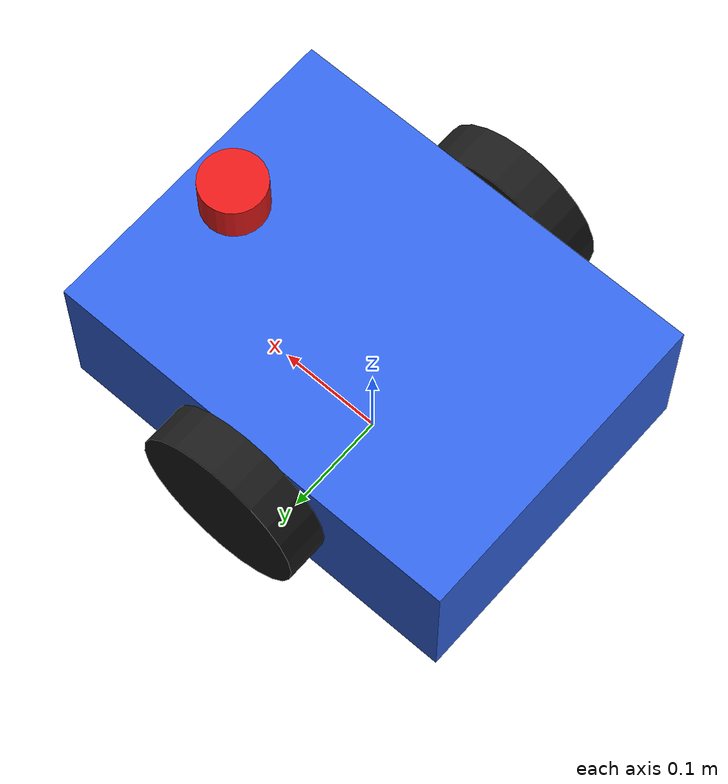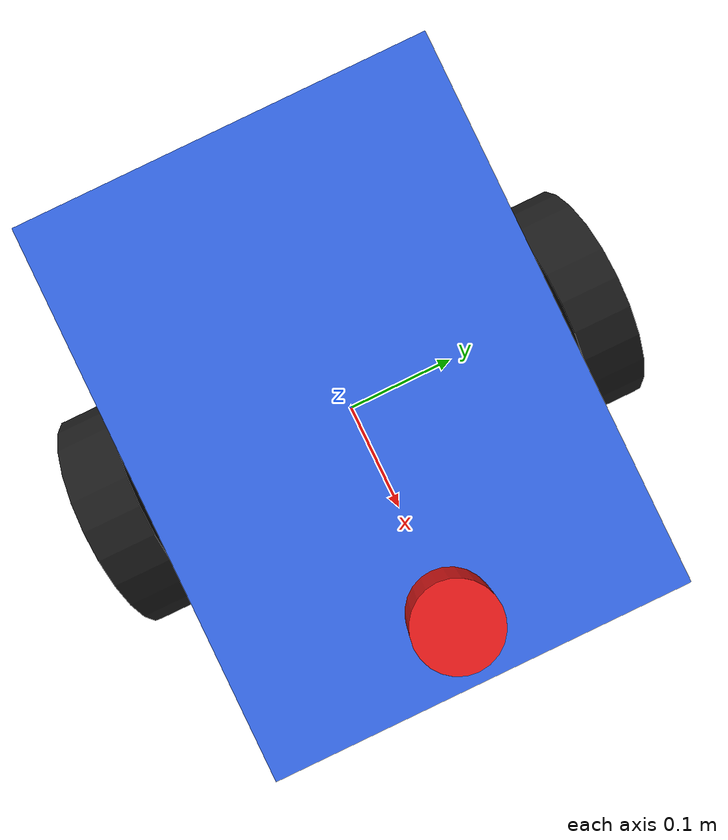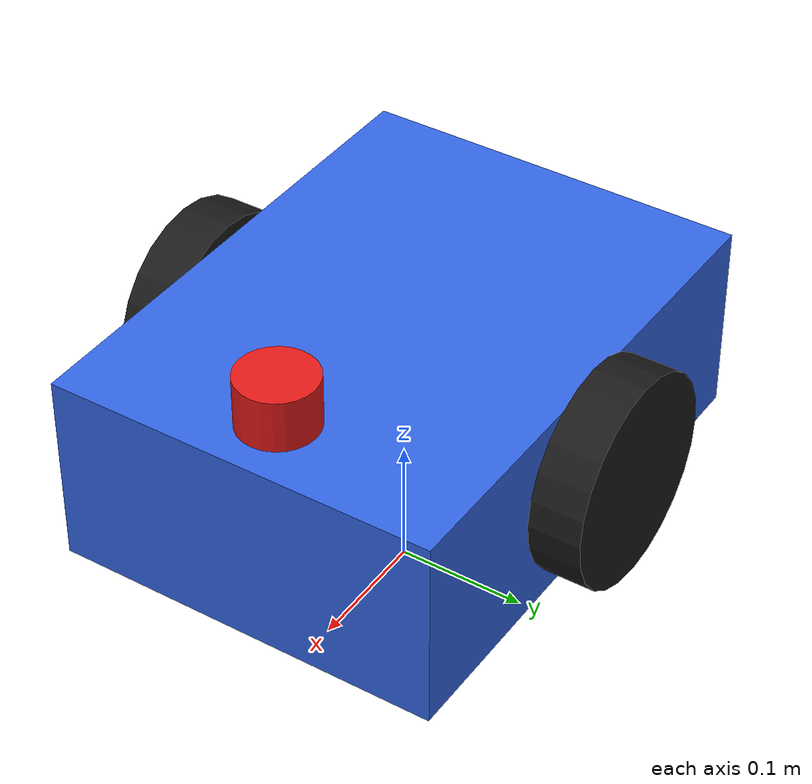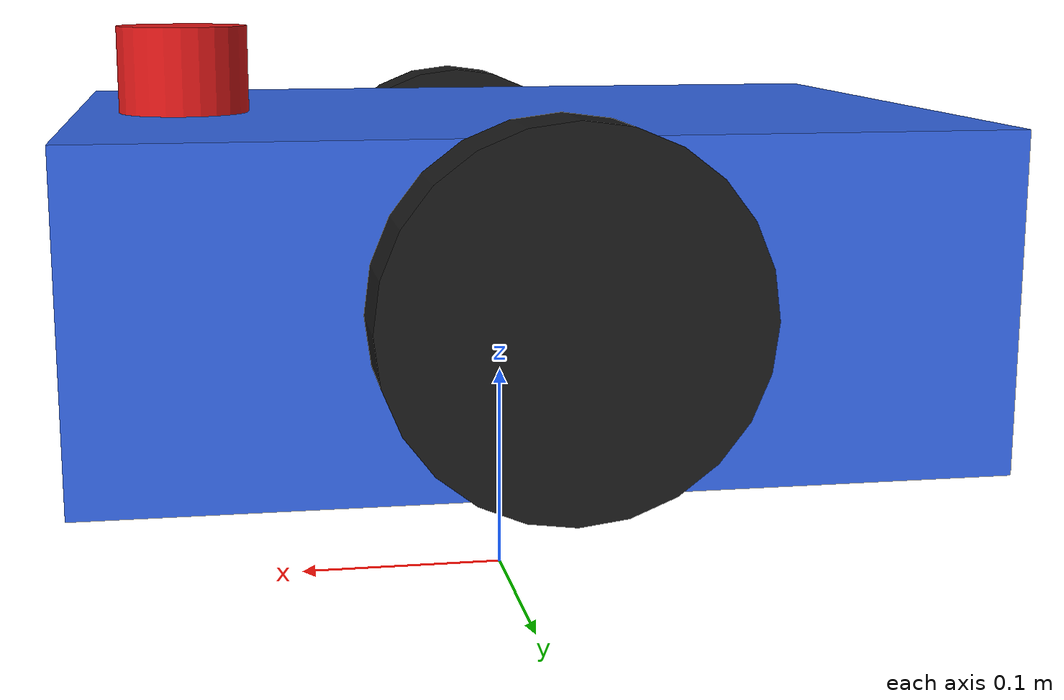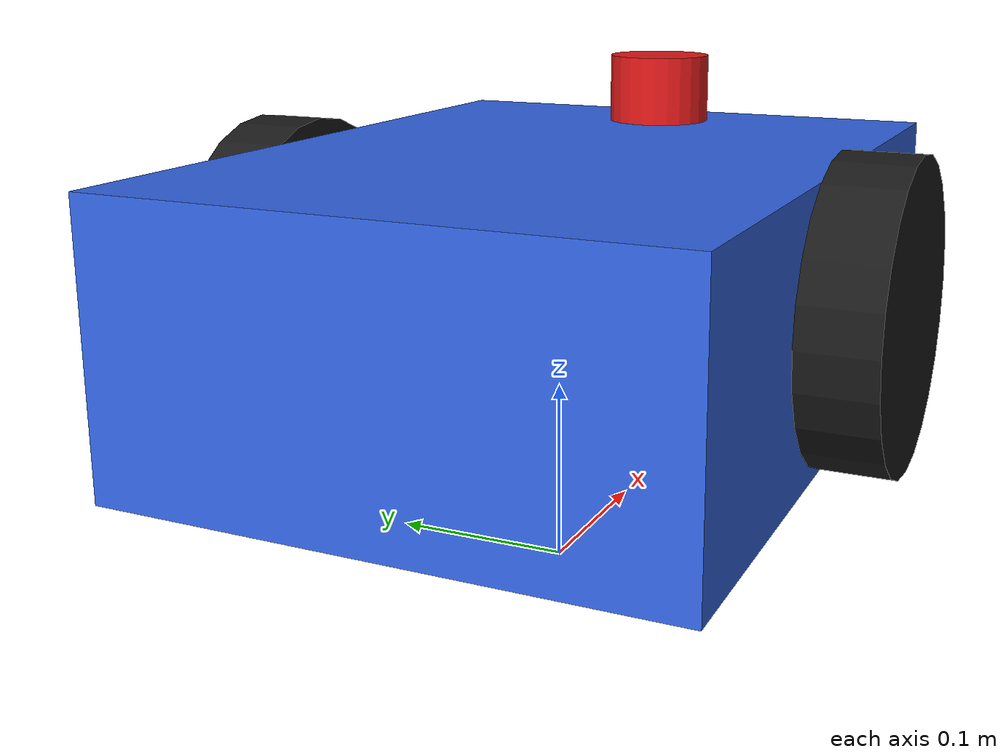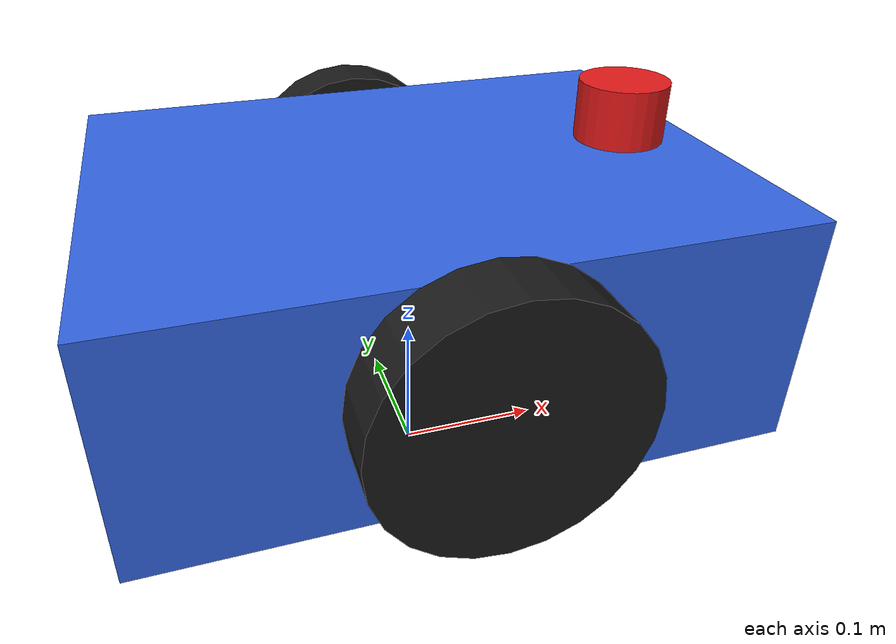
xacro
<?xml version="1.0"?>
<robot name="diff_robot" xmlns:xacro="http://www.ros.org/wiki/xacro">

  <!-- ========== PARÂMETROS ========== -->
  <xacro:property name="base_length" value="0.40"/>
  <xacro:property name="base_width"  value="0.30"/>
  <xacro:property name="base_height" value="0.15"/>
  <xacro:property name="base_mass"   value="8.0"/>

  <xacro:property name="wheel_radius"    value="0.08"/>
  <xacro:property name="wheel_thickness" value="0.04"/>
  <xacro:property name="wheel_mass"      value="1.0"/>
  <xacro:property name="wheel_separation" value="0.34"/>

  <xacro:property name="caster_radius" value="0.04"/>

  <!-- ========== MACROS ========== -->
  <!-- Inércia de uma caixa -->
  <xacro:macro name="box_inertia" params="m x y z">
    <inertial>
      <mass value="${m}"/>
      <inertia
        ixx="${m*(y*y+z*z)/12}" ixy="0" ixz="0"
        iyy="${m*(x*x+z*z)/12}" iyz="0"
        izz="${m*(x*x+y*y)/12}"/>
    </inertial>
  </xacro:macro>

  <!-- Inércia de um cilindro ao longo de y (eixo da roda) -->
  <xacro:macro name="cylinder_inertia" params="m r l">
    <inertial>
      <mass value="${m}"/>
      <inertia
        ixx="${m*(3*r*r+l*l)/12}" ixy="0" ixz="0"
        iyy="${m*r*r/2}"          iyz="0"
        izz="${m*(3*r*r+l*l)/12}"/>
    </inertial>
  </xacro:macro>

  <xacro:macro name="sphere_inertia" params="m r">
    <inertial>
      <mass value="${m}"/>
      <inertia
        ixx="${2*m*r*r/5}" ixy="0" ixz="0"
        iyy="${2*m*r*r/5}" iyz="0"
        izz="${2*m*r*r/5}"/>
    </inertial>
  </xacro:macro>

  <!-- ========== BASE FOOTPRINT ========== -->
  <link name="base_footprint"/>

  <!-- ========== CHASSIS ========== -->
  <link name="base_link">
    <visual>
      <geometry>
        <box size="${base_length} ${base_width} ${base_height}"/>
      </geometry>
      <material name="blue">
        <color rgba="0.2 0.4 0.9 1.0"/>
      </material>
    </visual>
    <collision>
      <geometry>
        <box size="${base_length} ${base_width} ${base_height}"/>
      </geometry>
    </collision>
    <xacro:box_inertia m="${base_mass}" x="${base_length}" y="${base_width}" z="${base_height}"/>
  </link>

  <joint name="base_joint" type="fixed">
    <parent link="base_footprint"/>
    <child link="base_link"/>
    <origin xyz="0 0 ${wheel_radius + base_height/2}" rpy="0 0 0"/>
  </joint>

  <!-- ========== RODAS ========== -->
  <xacro:macro name="wheel" params="prefix y_offset">
    <link name="wheel_${prefix}">
      <visual>
        <origin rpy="1.5708 0 0"/>
        <geometry>
          <cylinder radius="${wheel_radius}" length="${wheel_thickness}"/>
        </geometry>
        <material name="black">
          <color rgba="0.1 0.1 0.1 1.0"/>
        </material>
      </visual>
      <collision>
        <origin rpy="1.5708 0 0"/>
        <geometry>
          <cylinder radius="${wheel_radius}" length="${wheel_thickness}"/>
        </geometry>
      </collision>
      <xacro:cylinder_inertia m="${wheel_mass}" r="${wheel_radius}" l="${wheel_thickness}"/>
    </link>

    <joint name="wheel_${prefix}_joint" type="continuous">
      <parent link="base_link"/>
      <child link="wheel_${prefix}"/>
      <origin xyz="0 ${y_offset} ${-base_height/2 + wheel_radius}" rpy="0 0 0"/>
      <axis xyz="0 1 0"/>
      <dynamics damping="0.2" friction="0.1"/>

    </joint>
  </xacro:macro>

  <xacro:wheel prefix="left"  y_offset="${ wheel_separation/2}"/>
  <xacro:wheel prefix="right" y_offset="${-wheel_separation/2}"/>

  <!-- ========== CASTER (esfera de apoio) ========== -->
  <link name="caster">
    <visual>
      <geometry>
        <sphere radius="${caster_radius}"/>
      </geometry>
      <material name="grey">
        <color rgba="0.5 0.5 0.5 1.0"/>
      </material>
    </visual>
    <collision>
      <geometry>
        <sphere radius="${caster_radius}"/>
      </geometry>
    </collision>
    <xacro:sphere_inertia m="0.3" r="${caster_radius}"/>
  </link>

  <joint name="caster_joint" type="fixed">
    <parent link="base_link"/>
    <child link="caster"/>
    <origin xyz="${-base_length/2 + caster_radius} 0 ${-base_height/2 + caster_radius}"/>
  </joint>

  <!-- ========== LASER ========== -->
  <link name="laser_link">
    <visual>
      <geometry>
        <cylinder radius="0.03" length="0.04"/>
      </geometry>
      <material name="red">
        <color rgba="0.9 0.1 0.1 1.0"/>
      </material>
    </visual>
    <collision>
      <geometry>
        <cylinder radius="0.03" length="0.04"/>
      </geometry>
    </collision>
    <xacro:cylinder_inertia m="0.1" r="0.03" l="0.04"/>
  </link>

  <joint name="laser_joint" type="fixed">
    <parent link="base_link"/>
    <child link="laser_link"/>
    <origin xyz="${base_length/2 - 0.05} 0 ${base_height/2 + 0.02}" rpy="0 0 0"/>
  </joint>

  <!-- ========== GAZEBO: ATRITO DAS RODAS ========== -->
  <gazebo reference="wheel_left">
    <mu1>0.6</mu1>
    <mu2>0.6</mu2>
  </gazebo>
  <gazebo reference="wheel_right">
    <mu1>0.6</mu1>
    <mu2>0.6</mu2>
  </gazebo>
  <gazebo reference="caster">
    <mu1>0.0</mu1>
    <mu2>0.0</mu2>
  </gazebo>

<!-- ========== GAZEBO: DIFF DRIVE ========== -->
  <gazebo>
    <plugin filename="gz-sim-diff-drive-system"
            name="gz::sim::systems::DiffDrive">
      <left_joint>wheel_left_joint</left_joint>
      <right_joint>wheel_right_joint</right_joint>
      <wheel_separation>${wheel_separation}</wheel_separation>
      <wheel_radius>${wheel_radius}</wheel_radius>
      <odom_publish_frequency>50</odom_publish_frequency>
      <topic>cmd_vel</topic>
      <odom_topic>odom</odom_topic>
      <frame_id>odom</frame_id>
      <child_frame_id>base_footprint</child_frame_id>
      <tf_topic>tf</tf_topic>
    </plugin>
  </gazebo>

  <!-- ========== GAZEBO: ODOMETRY PUBLISHER (publica odom->base_footprint no /tf) ========== -->
  <gazebo>
    <plugin filename="gz-sim-odometry-publisher-system"
            name="gz::sim::systems::OdometryPublisher">
      <odom_frame>odom</odom_frame>
      <robot_base_frame>base_footprint</robot_base_frame>
      <odom_publish_frequency>50</odom_publish_frequency>
      <tf_topic>tf</tf_topic>
    </plugin>
  </gazebo>

  <!-- ========== GAZEBO: JOINT STATE PUBLISHER ========== -->
  <gazebo>
    <plugin filename="gz-sim-joint-state-publisher-system"
            name="gz::sim::systems::JointStatePublisher">
      <topic>joint_states</topic>
    </plugin>
  </gazebo>

  <!-- ========== GAZEBO: LASER ========== -->
  <gazebo reference="laser_link">
    <sensor name="laser" type="gpu_lidar">
      <pose>0 0 0 0 0 0</pose>
      <topic>scan</topic>
      <update_rate>10</update_rate>
      <always_on>true</always_on>
      <visualize>true</visualize>
      <lidar>
        <scan>
          <horizontal>
            <samples>360</samples>
            <resolution>1</resolution>
            <min_angle>-3.14159</min_angle>
            <max_angle>3.14159</max_angle>
          </horizontal>
        </scan>
        <range>
          <min>0.12</min>
          <max>8.0</max>
          <resolution>0.01</resolution>
        </range>
      </lidar>
      <gz_frame_id>laser_link</gz_frame_id>
    </sensor>
  </gazebo>

</robot>
